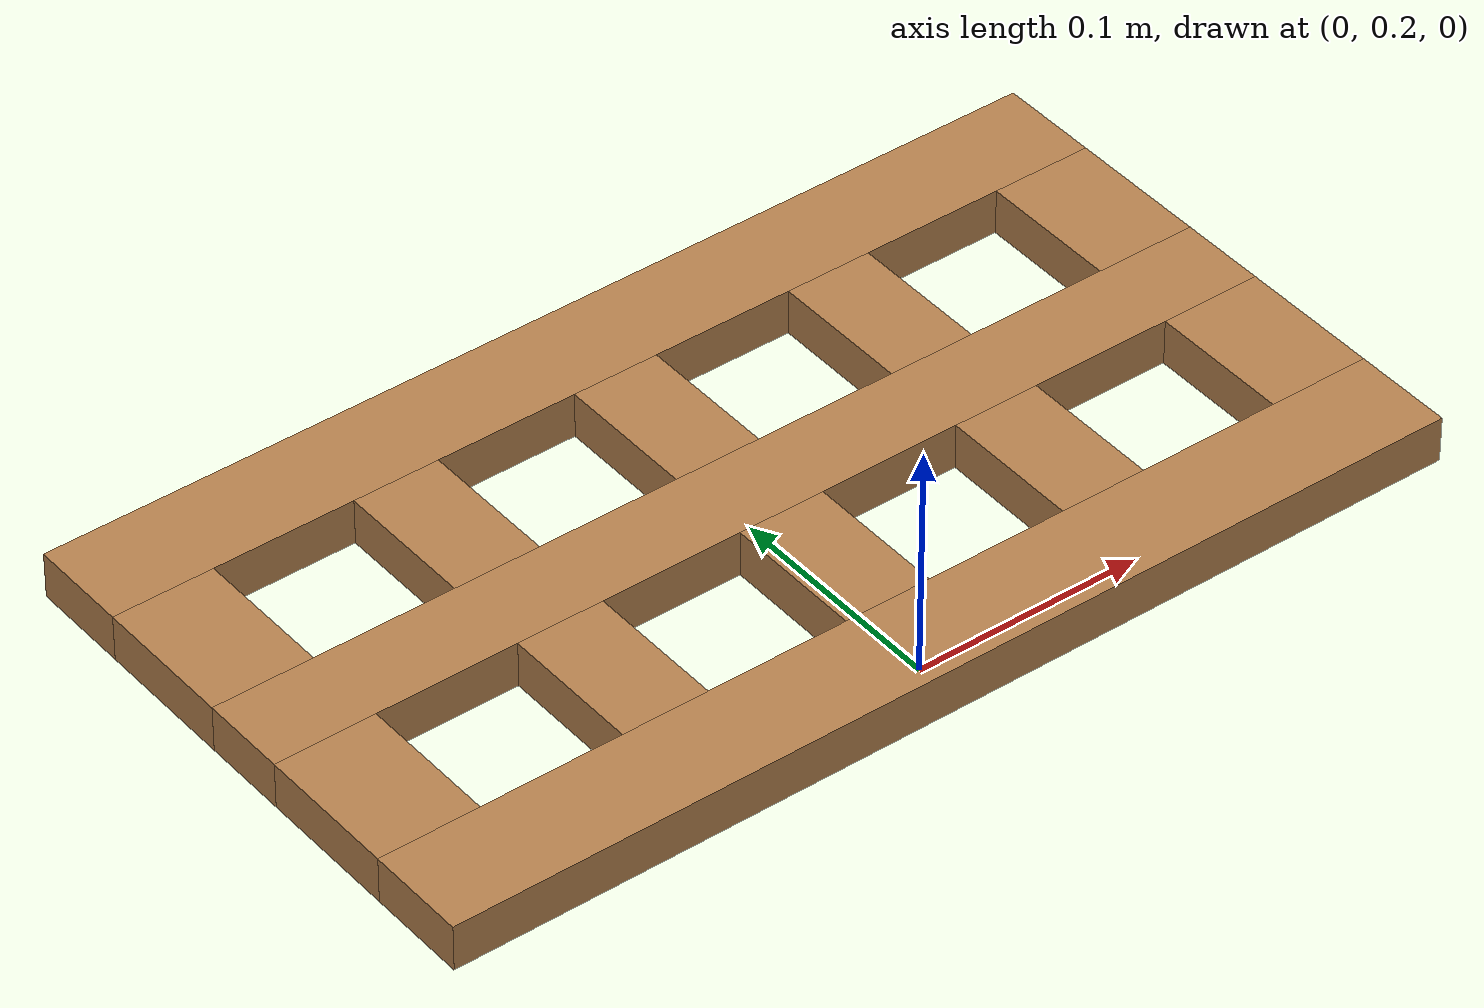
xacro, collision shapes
<?xml version="1.0"?>
<robot name="case">

<link name="base_link">
  <collision>
    <origin xyz="0 0.197 0.01" rpy="0 0 0"/>
    <geometry><box size="0.45 0.044 0.02"/></geometry>
  </collision>
  <collision>
    <origin xyz="0 0.300 0.01" rpy="0 0 0"/>
    <geometry><box size="0.45 0.038 0.02"/></geometry>
  </collision>
  <collision>
    <origin xyz="0 0.403 0.01" rpy="0 0 0"/>
    <geometry><box size="0.45 0.044 0.02"/></geometry>
  </collision>
  <collision>
    <origin xyz="-0.203 0.250 0.01" rpy="0 0 0"/>
    <geometry><box size="0.044 0.062 0.02"/></geometry>
  </collision>
  <collision>
    <origin xyz="-0.100 0.250 0.01" rpy="0 0 0"/>
    <geometry><box size="0.038 0.062 0.02"/></geometry>
  </collision>
  <collision>
    <origin xyz="0 0.250 0.01" rpy="0 0 0"/>
    <geometry><box size="0.038 0.062 0.02"/></geometry>
  </collision>
  <collision>
    <origin xyz="0.100 0.250 0.01" rpy="0 0 0"/>
    <geometry><box size="0.038 0.062 0.02"/></geometry>
  </collision>
  <collision>
    <origin xyz="0.203 0.250 0.01" rpy="0 0 0"/>
    <geometry><box size="0.044 0.062 0.02"/></geometry>
  </collision>
  <collision>
    <origin xyz="-0.203 0.350 0.01" rpy="0 0 0"/>
    <geometry><box size="0.044 0.062 0.02"/></geometry>
  </collision>
  <collision>
    <origin xyz="-0.100 0.350 0.01" rpy="0 0 0"/>
    <geometry><box size="0.038 0.062 0.02"/></geometry>
  </collision>
  <collision>
    <origin xyz="0 0.350 0.01" rpy="0 0 0"/>
    <geometry><box size="0.038 0.062 0.02"/></geometry>
  </collision>
  <collision>
    <origin xyz="0.100 0.350 0.01" rpy="0 0 0"/>
    <geometry><box size="0.038 0.062 0.02"/></geometry>
  </collision>
  <collision>
    <origin xyz="0.203 0.350 0.01" rpy="0 0 0"/>
    <geometry><box size="0.044 0.062 0.02"/></geometry>
  </collision>

  <visual>
    <origin xyz="0 0.3 0" rpy="0 0 -3.14"/>
    <geometry>
        <mesh filename="file://$(find symphony_pnp)/models/case.dae"/>
    </geometry>
  </visual>

  <inertial>
    <origin xyz="0 0.3 0.01" rpy="0 0 0" />
    <mass value="0.5" />
    <inertia
      ixx="0.0026208" ixy="0.0" ixz="0.0"
      iyy="0.0084542" iyz="0.0"
      izz="0.0110417" />
  </inertial>
  </link>

<gazebo reference="base_link">
  <material>Gazebo/Wood</material>
    <mu1>2.0</mu1>
    <mu2>2.0</mu2>
</gazebo>
<gazebo>
  <static>true</static>
</gazebo>

</robot>
